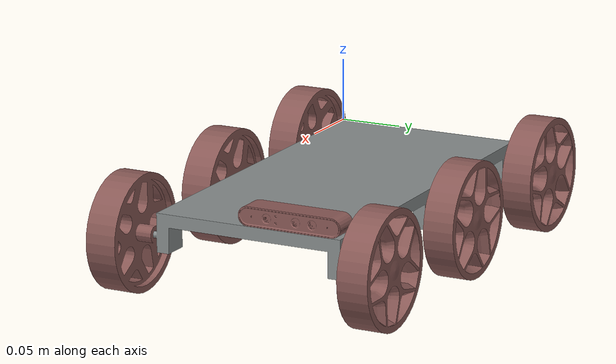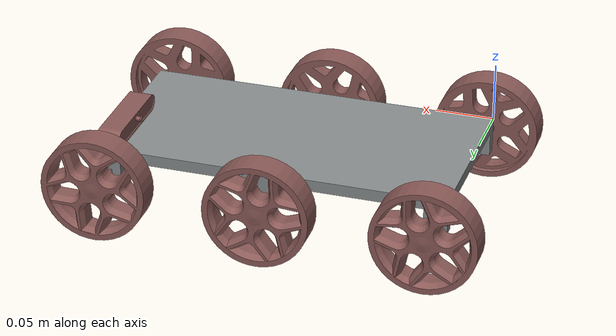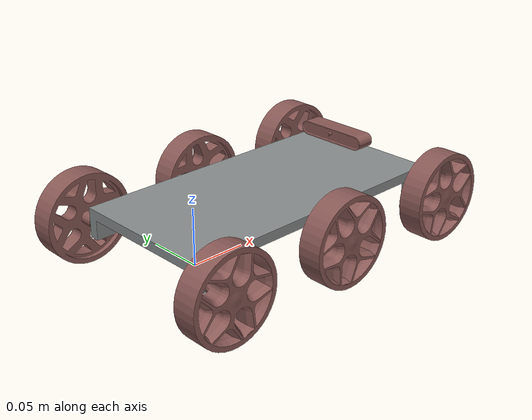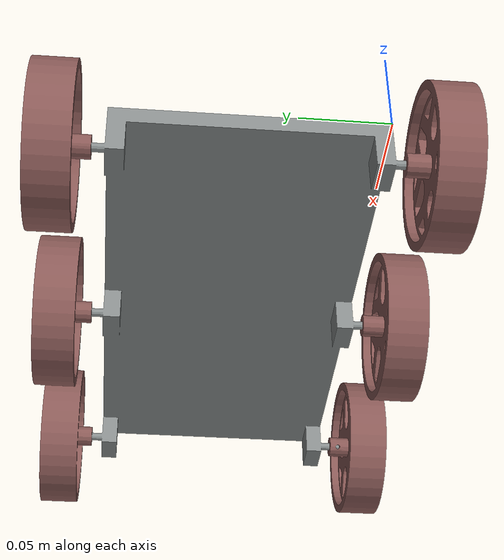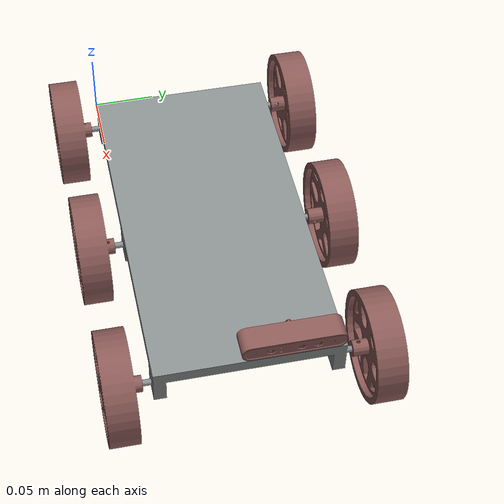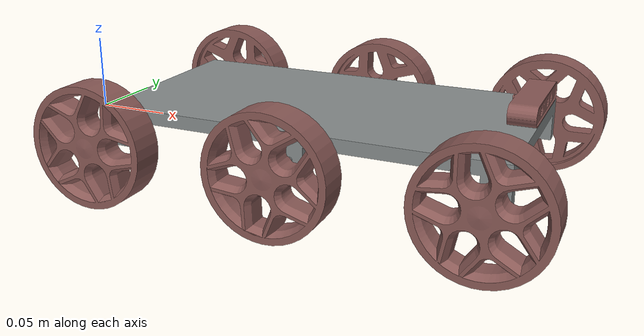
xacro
<?xml version="1.0" encoding="utf-8"?>

<robot name="robot_6wheel_package"  xmlns:xacro="http://www.ros.org/wiki/xacro">

  <xacro:include filename="$(find robot_6wheel_package)/urdf/robot_6wheel_package.gazebo" />

  <transmission name="tran1">
    <type>transmission_interface/SimpleTransmission</type>
    <joint name="wheel1_joint">
      <hardwareInterface>hardware_interface/EffortJointInterface</hardwareInterface>
    </joint>
    <actuator name="motor1">
      <hardwareInterface>hardware_interface/EffortJointInterface</hardwareInterface>
      <mechanicalReduction>1</mechanicalReduction>
    </actuator>
  </transmission>

  <transmission name="tran2">
    <type>transmission_interface/SimpleTransmission</type>
    <joint name="wheel4_joint">
      <hardwareInterface>hardware_interface/EffortJointInterface</hardwareInterface>
    </joint>
    <actuator name="motor2">
      <hardwareInterface>hardware_interface/EffortJointInterface</hardwareInterface>
      <mechanicalReduction>1</mechanicalReduction>
    </actuator>
  </transmission>

  <link name="chasis_base_link"/>

  <joint name ="base_link_to_dummy" type = "fixed">
    <parent link="chasis_base_link"/>
    <child link="dummy_link"/>
  </joint>

  <link name="dummy_link">
    <inertial>
      <origin
        xyz="0.15 0.075 -0.00582993130335166"
        rpy="0 0 0" />
      <mass
        value="3.7155783170235" />
      <inertia
        ixx="0.00771270055030406"
        ixy="-8.76827992918461E-18"
        ixz="-7.78645455459057E-20"
        iyy="0.0290967066578026"
        iyz="-1.44687258735659E-19"
        izz="0.036650978009623" />
    </inertial>
    <visual>
      <origin
        xyz="0 0 0"
        rpy="0 0 0" />
      <geometry>
        <mesh
          filename="package://robot_6wheel_package/meshes/chasis_base_link.STL" />
      </geometry>
      <material
        name="">
        <color
          rgba="0.529411764705882 0.549019607843137 0.549019607843137 1" />
      </material>
    </visual>
    <collision>
      <origin
        xyz="0 0 0"
        rpy="0 0 0" />
      <geometry>
        <mesh
          filename="package://robot_6wheel_package/meshes/chasis_base_link.STL" />
      </geometry>
    </collision>
  </link>

  <link
    name="wheel1_link">
    <inertial>
      <origin
        xyz="3.4095E-06 2.8072E-05 0.020558"
        rpy="0 0 0" />
      <mass
        value="0.78115" />
      <inertia
        ixx="0.00047604"
        ixy="-9.2939E-08"
        ixz="-2.7041E-09"
        iyy="0.00047528"
        iyz="-2.2261E-08"
        izz="0.00089314" />
    </inertial>
    <visual>
      <origin
        xyz="0 0 0"
        rpy="0 0 0" />
      <geometry>
        <mesh
          filename="package://robot_6wheel_package/meshes/wheel1_link.STL" />
      </geometry>
      <material
        name="">
        <color
          rgba="0.53725 0.34902 0.33725 1" />
      </material>
    </visual>
    <collision>
      <origin
        xyz="0 0 0"
        rpy="0 0 0" />
      <geometry>
        <mesh
          filename="package://robot_6wheel_package/meshes/wheel1_link.STL" />
      </geometry>
    </collision>
  </link>
  <joint
    name="wheel1_joint"
    type="revolute">
    <origin
      xyz="0.29 0.15725 -0.02"
      rpy="-1.5708 0 0" />
    <parent
      link="chasis_base_link" />
    <child
      link="wheel1_link" />
    <axis
      xyz="0 0 1" />
    <limit
      lower="-10000"
      upper="10000"
      effort="10000"
      velocity="10000" />
    <dynamics
      damping="0"
      friction= "0.005" />
  </joint>
  <link
    name="wheel2_link">
    <inertial>
      <origin
        xyz="-2.8011E-05 -3.8831E-06 0.020558"
        rpy="0 0 0" />
      <mass
        value="0.78115" />
      <inertia
        ixx="0.00047529"
        ixy="-1.0561E-07"
        ixz="2.2212E-08"
        iyy="0.00047603"
        iyz="3.079E-09"
        izz="0.00089314" />
    </inertial>
    <visual>
      <origin
        xyz="0 0 0"
        rpy="0 0 0" />
      <geometry>
        <mesh
          filename="package://robot_6wheel_package/meshes/wheel2_link.STL" />
      </geometry>
      <material
        name="">
        <color
          rgba="0.53725 0.34902 0.33725 1" />
      </material>
    </visual>
    <collision>
      <origin
        xyz="0 0 0"
        rpy="0 0 0" />
      <geometry>
        <mesh
          filename="package://robot_6wheel_package/meshes/wheel2_link.STL" />
      </geometry>
    </collision>
  </link>
  <joint
    name="wheel2_joint"
    type="revolute">
    <origin
      xyz="0.15 0.15725 -0.02"
      rpy="-1.5708 0 0" />
    <parent
      link="chasis_base_link" />
    <child
      link="wheel2_link" />
    <axis
      xyz="0 0 1" />
    <dynamics
      damping="0"
      friction= "0.005" />
    <limit
      lower="-10000"
      upper="10000"
      effort="10000"
      velocity="10000" />
    <dynamics
      damping="0"
      friction= "0" />
  </joint>
  <link
    name="wheel3_link">
    <inertial>
      <origin
        xyz="-2.1048E-05 1.8886E-05 0.020558"
        rpy="0 0 0" />
      <mass
        value="0.78115" />
      <inertia
        ixx="0.00047562"
        ixy="3.8598E-07"
        ixz="1.6691E-08"
        iyy="0.0004757"
        iyz="-1.4977E-08"
        izz="0.00089314" />
    </inertial>
    <visual>
      <origin
        xyz="0 0 0"
        rpy="0 0 0" />
      <geometry>
        <mesh
          filename="package://robot_6wheel_package/meshes/wheel3_link.STL" />
      </geometry>
      <material
        name="">
        <color
          rgba="0.53725 0.34902 0.33725 1" />
      </material>
    </visual>
    <collision>
      <origin
        xyz="0 0 0"
        rpy="0 0 0" />
      <geometry>
        <mesh
          filename="package://robot_6wheel_package/meshes/wheel3_link.STL" />
      </geometry>
    </collision>
  </link>
  <joint
    name="wheel3_joint"
    type="revolute">
    <origin
      xyz="0.01 0.15725 -0.02"
      rpy="-1.5708 0 0" />
    <parent
      link="chasis_base_link" />
    <child
      link="wheel3_link" />
    <axis
      xyz="0 0 1" />
    <limit
      lower="-10000"
      upper="10000"
      effort="10000"
      velocity="10000" />
    <dynamics
      damping="0"
      friction= "0.005" />
  </joint>
  <link
    name="wheel4_link">
    <inertial>
      <origin
        xyz="2.449E-05 1.414E-05 -0.011348"
        rpy="0 0 0" />
      <mass
        value="0.78115" />
      <inertia
        ixx="0.00047546"
        ixy="-3.3624E-07"
        ixz="-1.9421E-08"
        iyy="0.00047585"
        iyz="-1.1212E-08"
        izz="0.00089314" />
    </inertial>
    <visual>
      <origin
        xyz="0 0 0"
        rpy="0 0 0" />
      <geometry>
        <mesh
          filename="package://robot_6wheel_package/meshes/wheel4_link.STL" />
      </geometry>
      <material
        name="">
        <color
          rgba="0.53725 0.34902 0.33725 1" />
      </material>
    </visual>
    <collision>
      <origin
        xyz="0 0 0"
        rpy="0 0 0" />
      <geometry>
        <mesh
          filename="package://robot_6wheel_package/meshes/wheel4_link.STL" />
      </geometry>
    </collision>
  </link>
  <joint
    name="wheel4_joint"
    type="revolute">
    <origin
      xyz="0.29 -0.039156 -0.02"
      rpy="1.5708 0 0" />
    <parent
      link="chasis_base_link" />
    <child
      link="wheel4_link" />
    <axis
      xyz="0 0 1" />
    <limit
      lower="-10000"
      upper="10000"
      effort="10000"
      velocity="10000" />
    <dynamics
      damping="0"
      friction= "0.005" />
  </joint>
  <link
    name="wheel5_link">
    <inertial>
      <origin
        xyz="-5.0954E-06 -2.7816E-05 -0.011348"
        rpy="0 0 0" />
      <mass
        value="0.78115" />
      <inertia
        ixx="0.00047602"
        ixy="-1.3762E-07"
        ixz="4.041E-09"
        iyy="0.0004753"
        iyz="2.2058E-08"
        izz="0.00089314" />
    </inertial>
    <visual>
      <origin
        xyz="0 0 0"
        rpy="0 0 0" />
      <geometry>
        <mesh
          filename="package://robot_6wheel_package/meshes/wheel5_link.STL" />
      </geometry>
      <material
        name="">
        <color
          rgba="0.53725 0.34902 0.33725 1" />
      </material>
    </visual>
    <collision>
      <origin
        xyz="0 0 0"
        rpy="0 0 0" />
      <geometry>
        <mesh
          filename="package://robot_6wheel_package/meshes/wheel5_link.STL" />
      </geometry>
    </collision>
  </link>
  <joint
    name="wheel5_joint"
    type="revolute">
    <origin
      xyz="0.15 -0.039156 -0.02"
      rpy="1.5708 0 0" />
    <parent
      link="chasis_base_link" />
    <child
      link="wheel5_link" />
    <axis
      xyz="0 0 1" />
    <limit
      lower="-10000"
      upper="10000"
      effort="10000"
      velocity="10000" />
    <dynamics
      damping="0"
      friction= "0.005" />
  </joint>
  <link
    name="wheel6_link">
    <inertial>
      <origin
        xyz="9.5735E-06 -2.6609E-05 -0.011348"
        rpy="0 0 0" />
      <mass
        value="0.78115" />
      <inertia
        ixx="0.00047596"
        ixy="2.4735E-07"
        ixz="-7.5914E-09"
        iyy="0.00047536"
        iyz="2.1101E-08"
        izz="0.00089314" />
    </inertial>
    <visual>
      <origin
        xyz="0 0 0"
        rpy="0 0 0" />
      <geometry>
        <mesh
          filename="package://robot_6wheel_package/meshes/wheel6_link.STL" />
      </geometry>
      <material
        name="">
        <color
          rgba="0.53725 0.34902 0.33725 1" />
      </material>
    </visual>
    <collision>
      <origin
        xyz="0 0 0"
        rpy="0 0 0" />
      <geometry>
        <mesh
          filename="package://robot_6wheel_package/meshes/wheel6_link.STL" />
      </geometry>
    </collision>
  </link>
  <joint
    name="wheel6_joint"
    type="revolute">
    <origin
      xyz="0.01 -0.039156 -0.02"
      rpy="1.5708 0 0" />
    <parent
      link="chasis_base_link" />
    <child
      link="wheel6_link" />
    <axis
      xyz="0 0 1" />
    <limit
      lower="-10000"
      upper="10000"
      effort="10000"
      velocity="10000" />
    <dynamics
      damping="0"
      friction= "0.005" />
  </joint>
  <link
    name="camera_Link">
    <inertial>
      <origin
        xyz="-0.0095879 0.01837 5.5091E-06"
        rpy="0 0 0" />
      <mass
        value="0.20262" />
      <inertia
        ixx="0.0001105"
        ixy="9.3359E-09"
        ixz="1.3216E-08"
        iyy="9.9558E-06"
        iyz="-5.5205E-12"
        izz="0.00011302" />
    </inertial>
    <visual>
      <origin
        xyz="0 0 0"
        rpy="0 0 0" />
      <geometry>
        <mesh
          filename="package://robot_6wheel_package/meshes/camera_Link.STL" />
      </geometry>
      <material
        name="">
        <color
          rgba="0.53725 0.34902 0.33725 1" />
      </material>
    </visual>
    <collision>
      <origin
        xyz="0 0 0"
        rpy="0 0 0" />
      <geometry>
        <mesh
          filename="package://robot_6wheel_package/meshes/camera_Link.STL" />
      </geometry>
    </collision>
  </link>
  <joint
    name="camera_joint"
    type="fixed">
    <origin
      xyz="0.2995 0.090625 0.0075"
      rpy="0 0 0" />
    <parent
      link="chasis_base_link" />
    <child
      link="camera_Link" />
    <axis
      xyz="0 0 0" />
  </joint>
</robot>
